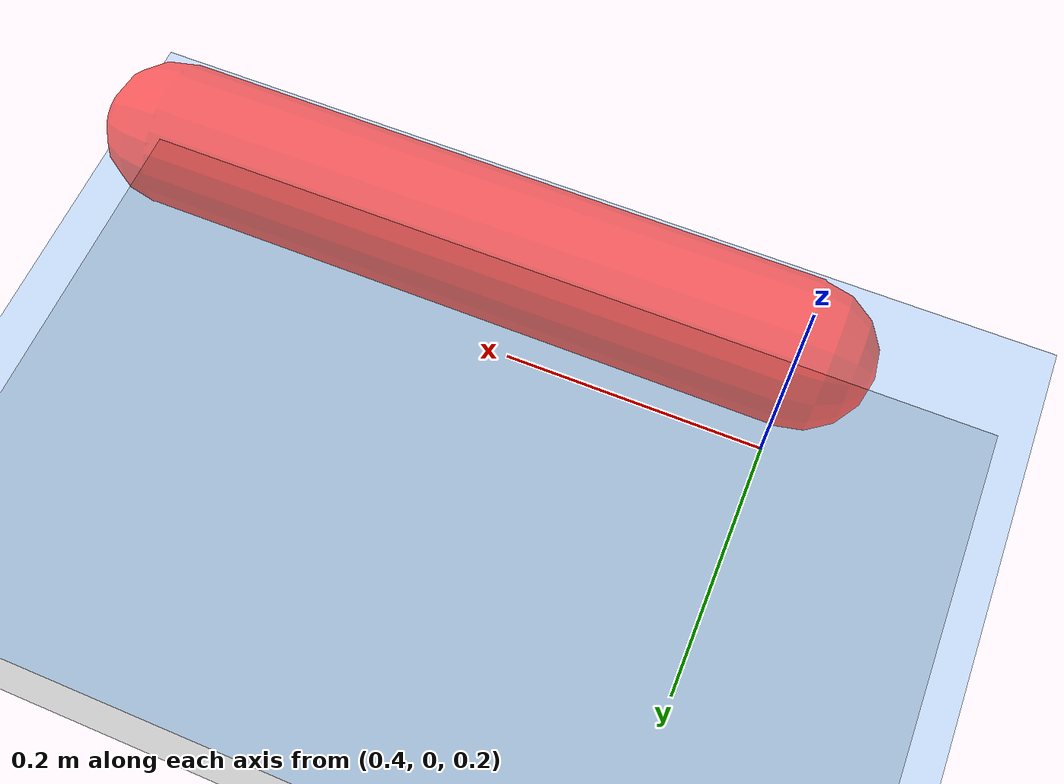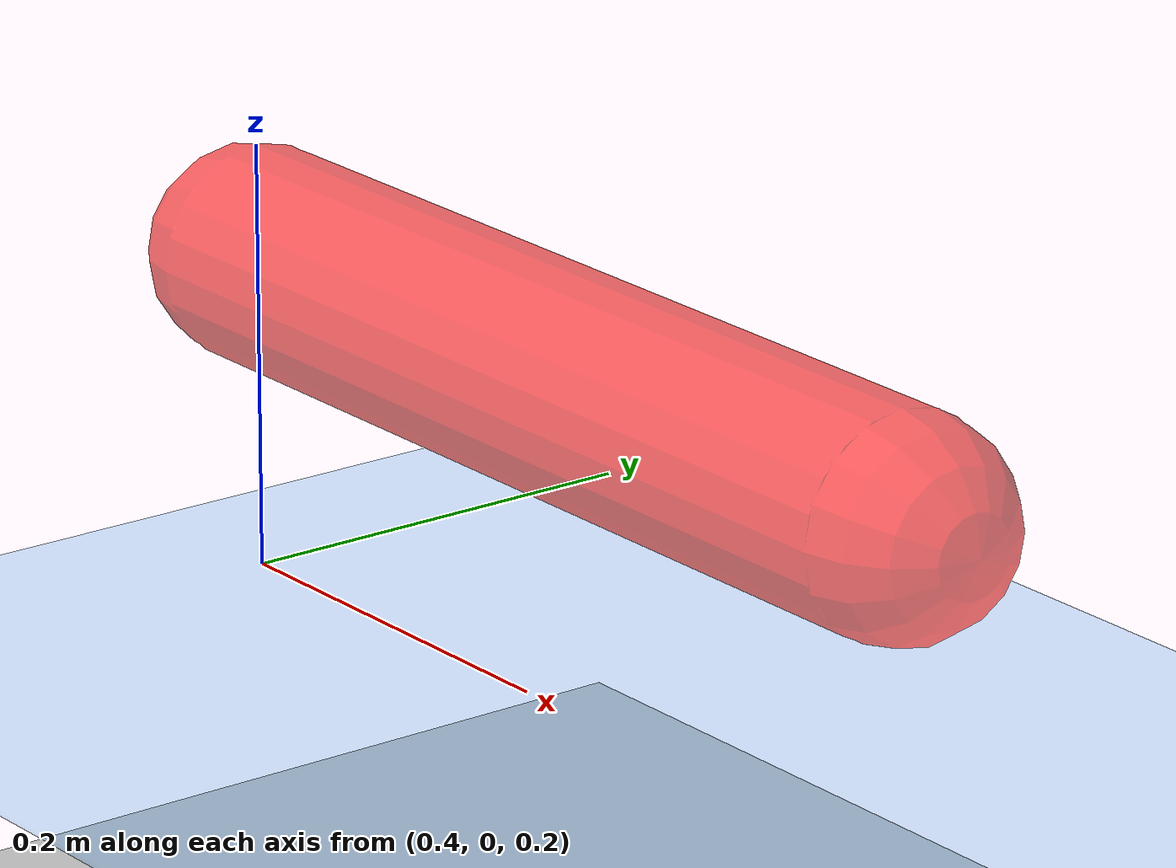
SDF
<?xml version="1.0" ?>
<sdf version="1.6">
  <world name="kuka_world">
    <gravity>0 0 0</gravity>

    <physics name="1ms" type="ignored">
      <max_step_size>0.001</max_step_size>
      <real_time_factor>1.0</real_time_factor>
    </physics>

    <plugin
      filename="gz-sim-physics-system"
      name="gz::sim::systems::Physics">
    </plugin>
    <plugin
      filename="gz-sim-user-commands-system"
      name="gz::sim::systems::UserCommands">
    </plugin>
    <plugin
      filename="gz-sim-scene-broadcaster-system"
      name="gz::sim::systems::SceneBroadcaster">
    </plugin>
    <plugin
      filename="gz-sim-contact-system"
      name="gz::sim::systems::Contact">
    </plugin>
    <plugin
      filename="gz-sim-apply-link-wrench-system"
      name="gz::sim::systems::ApplyLinkWrench">
    </plugin>

    <light type="directional" name="sun">
      <cast_shadows>true</cast_shadows>
      <pose>0 0 10 0 0 0</pose>
      <diffuse>0.8 0.8 0.8 1</diffuse>
      <specular>0.2 0.2 0.2 1</specular>
      <attenuation>
        <range>1000</range>
        <constant>0.9</constant>
        <linear>0.01</linear>
        <quadratic>0.001</quadratic>
      </attenuation>
      <direction>-0.5 0.1 -0.9</direction>
    </light>

    <model name="ground_plane">
      <static>true</static>
      <link name="link">
        <collision name="collision">
          <geometry>
            <plane>
              <normal>0 0 1</normal>
              <size>100 100</size>
            </plane>
          </geometry>
        </collision>
        <visual name="visual">
          <geometry>
            <plane>
              <normal>0 0 1</normal>
              <size>100 100</size>
            </plane>
          </geometry>
          <material>
            <ambient>0.8 0.8 0.8 1</ambient>
            <diffuse>0.8 0.8 0.8 1</diffuse>
            <specular>0.8 0.8 0.8 1</specular>
          </material>
        </visual>
      </link>
    </model>

    <model name="capsule_obstacle">
      <static>true</static>
      <pose>0.625 0.0 0.35 0 1.5707963 0</pose>
      <link name="link">
        <visual name="visual">
          <geometry>
            <capsule>
              <radius>0.05</radius>
              <length>0.45</length>
            </capsule>
          </geometry>
          <material>
            <ambient>1 0 0 0.6</ambient>
            <diffuse>1 0 0 0.6</diffuse>
            <specular>0.2 0.2 0.2 1</specular>
          </material>
        </visual>
      </link>
    </model>

    <model name="threshold_plane">
      <static>true</static>
      <pose>0 0 0.15 0 0 0</pose>
      <link name="link">
        <visual name="visual">
          <geometry>
            <plane>
              <normal>0 0 1</normal>
              <size>2 2</size>
            </plane>
          </geometry>
          <material>
            <ambient>0.2 0.6 1 0.25</ambient>
            <diffuse>0.2 0.6 1 0.25</diffuse>
            <specular>0.1 0.1 0.1 0.25</specular>
          </material>
        </visual>
      </link>
    </model>
  </world>
</sdf>
